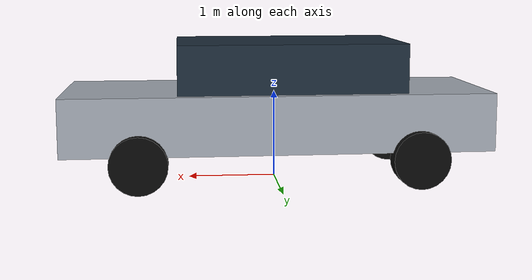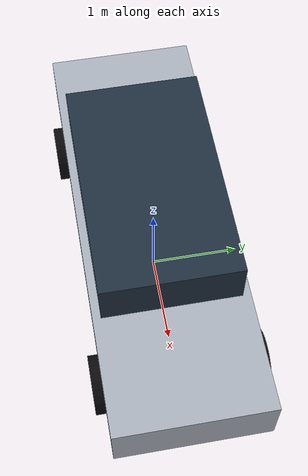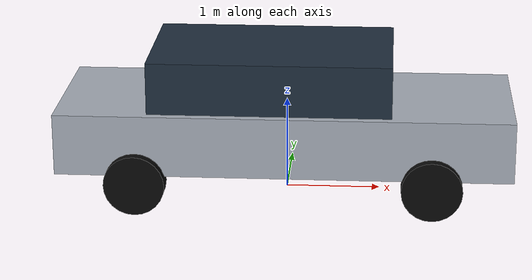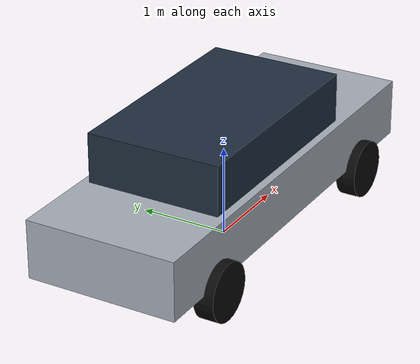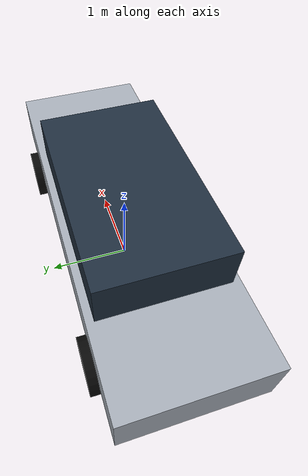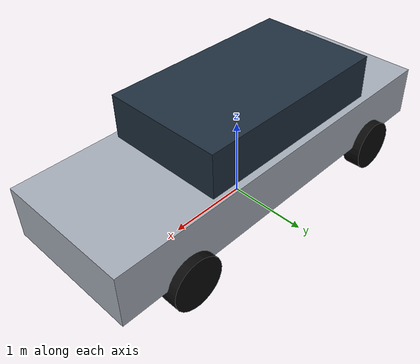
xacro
<?xml version="1.0"?>
<robot xmlns:xacro="http://www.ros.org/wiki/xacro" name="painting_vehicle">

  <!-- Vehicle dimensions in metres -->
  <xacro:property name="car_length" value="4.8"/>
  <xacro:property name="car_width" value="1.9"/>
  <xacro:property name="car_height" value="1.6"/>

  <link name="base_link">
    <inertial>
      <origin xyz="0 0 0.8"/>
      <mass value="1200"/>
      <inertia ixx="500" ixy="0" ixz="0"
               iyy="1500" iyz="0" izz="1700"/>
    </inertial>

    <!-- Main lower body -->
    <visual>
      <origin xyz="0 0 0.72"/>
      <geometry>
        <box size="4.8 1.68 0.65"/>
      </geometry>
      <material name="car_body">
        <color rgba="0.65 0.68 0.72 1"/>
      </material>
    </visual>

    <collision>
      <origin xyz="0 0 0.72"/>
      <geometry>
        <box size="4.8 1.68 0.65"/>
      </geometry>
    </collision>

    <!-- Upper cabin -->
    <visual>
      <origin xyz="-0.15 0 1.32"/>
      <geometry>
        <box size="2.55 1.50 0.55"/>
      </geometry>
      <material name="windows">
        <color rgba="0.12 0.18 0.24 1"/>
      </material>
    </visual>

    <collision>
      <origin xyz="-0.15 0 1.32"/>
      <geometry>
        <box size="2.55 1.50 0.55"/>
      </geometry>
    </collision>
  </link>

  <!-- Wheel macro -->
  <xacro:macro name="wheel" params="name x y">
    <link name="${name}">
      <visual>
        <origin rpy="1.5708 0 0"/>
        <geometry>
          <cylinder radius="0.32" length="0.22"/>
        </geometry>
        <material name="tyre">
          <color rgba="0.035 0.035 0.035 1"/>
        </material>
      </visual>

      <collision>
        <origin rpy="1.5708 0 0"/>
        <geometry>
          <cylinder radius="0.32" length="0.22"/>
        </geometry>
      </collision>
    </link>

    <joint name="${name}_joint" type="fixed">
      <parent link="base_link"/>
      <child link="${name}"/>
      <origin xyz="${x} ${y} 0.32"/>
    </joint>
  </xacro:macro>

  <!-- Four wheels -->
  <xacro:wheel name="front_left_wheel"  x="1.55"  y="0.84"/>
  <xacro:wheel name="front_right_wheel" x="1.55"  y="-0.84"/>
  <xacro:wheel name="rear_left_wheel"   x="-1.55" y="0.84"/>
  <xacro:wheel name="rear_right_wheel"  x="-1.55" y="-0.84"/>

</robot>
